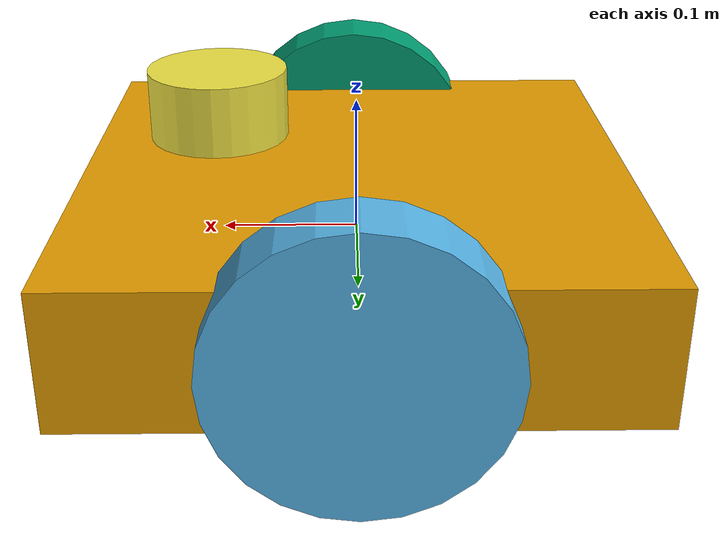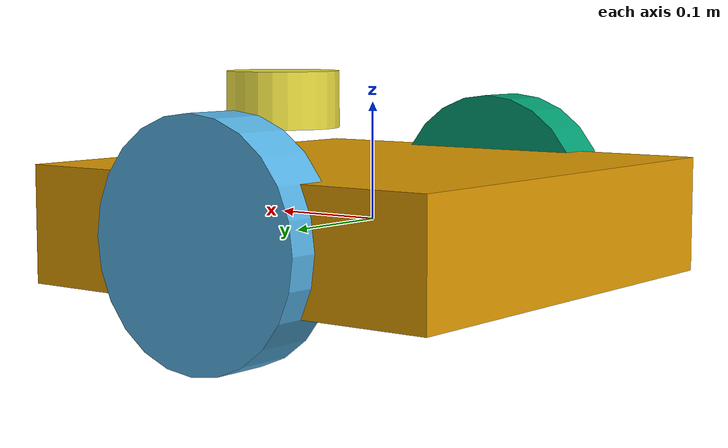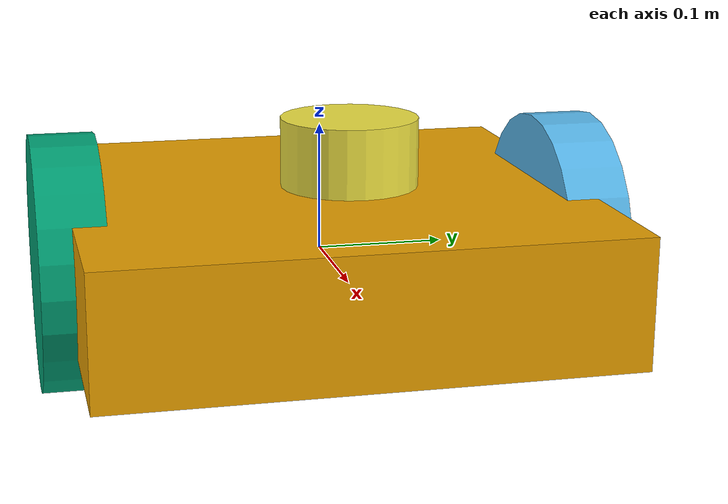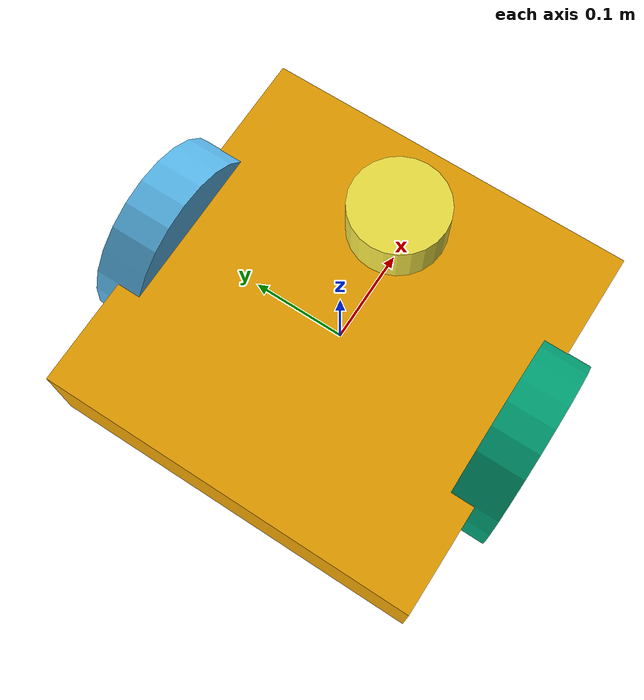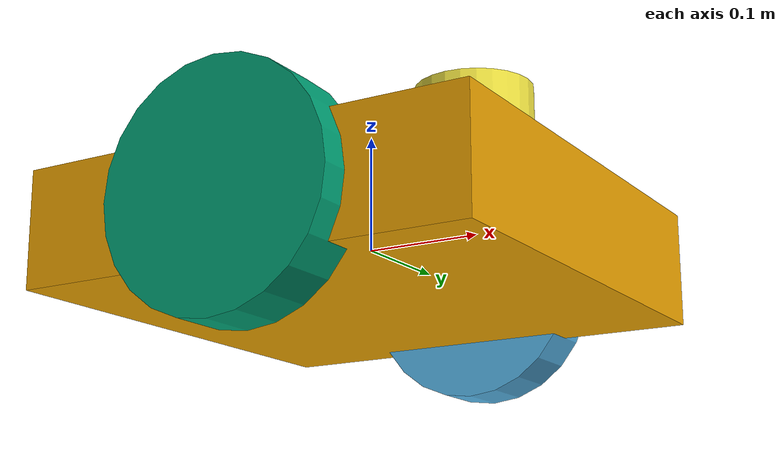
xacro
<?xml version="1.0"?>
<robot xmlns:xacro="http://www.ros.org/wiki/xacro" name="my_robot">

  <link name="base_link">
    <visual><geometry><box size="0.4 0.4 0.1"/></geometry></visual>
    <collision><geometry><box size="0.4 0.4 0.1"/></geometry></collision>
    <inertial>
      <mass value="5.0"/>
      <inertia ixx="0.07" ixy="0" ixz="0" iyy="0.07" iyz="0" izz="0.13"/>
    </inertial>
  </link>

  <link name="left_wheel">
    <visual><geometry><cylinder radius="0.1" length="0.05"/></geometry></visual>
    <collision><geometry><cylinder radius="0.1" length="0.05"/></geometry></collision>
    <inertial>
      <mass value="0.5"/>
      <inertia ixx="0.001" ixy="0" ixz="0" iyy="0.001" iyz="0" izz="0.002"/>
    </inertial>
  </link>

  <joint name="left_wheel_joint" type="continuous">
    <parent link="base_link"/><child link="left_wheel"/>
    <origin xyz="0 0.2 0" rpy="-1.5708 0 0"/><axis xyz="0 0 1"/>
  </joint>

  <link name="right_wheel">
    <visual><geometry><cylinder radius="0.1" length="0.05"/></geometry></visual>
    <collision><geometry><cylinder radius="0.1" length="0.05"/></geometry></collision>
    <inertial>
      <mass value="0.5"/>
      <inertia ixx="0.001" ixy="0" ixz="0" iyy="0.001" iyz="0" izz="0.002"/>
    </inertial>
  </link>

  <joint name="right_wheel_joint" type="continuous">
    <parent link="base_link"/><child link="right_wheel"/>
    <origin xyz="0 -0.2 0" rpy="-1.5708 0 0"/><axis xyz="0 0 1"/>
  </joint>

  <gazebo>
    <plugin name="differential_drive_controller" filename="libgazebo_ros_diff_drive.so">
      <updateRate>20</updateRate>
      <leftJoint>left_wheel_joint</leftJoint>
      <rightJoint>right_wheel_joint</rightJoint>
      <wheelSeparation>0.4</wheelSeparation>
      <wheelDiameter>0.2</wheelDiameter>
      <commandTopic>cmd_vel</commandTopic>
      <odometryTopic>odom</odometryTopic>
      <robotBaseFrame>base_link</robotBaseFrame>
      <publishWheelTF>true</publishWheelTF>
      <publishOdomTF>true</publishOdomTF>
    </plugin>
  </gazebo>

  <link name="lidar_link">
    <visual><geometry><cylinder radius="0.05" length="0.05"/></geometry></visual>
    <collision><geometry><cylinder radius="0.05" length="0.05"/></geometry></collision>
    <inertial>
      <mass value="0.1"/>
      <inertia ixx="0.0001" ixy="0" ixz="0" iyy="0.0001" iyz="0" izz="0.0001"/>
    </inertial>
  </link>

  <joint name="lidar_joint" type="fixed">
    <parent link="base_link"/><child link="lidar_link"/>
    <origin xyz="0.1 0 0.1" rpy="0 0 0"/>
  </joint>

  <gazebo reference="lidar_link">
    <sensor type="ray" name="laser">
      <visualize>false</visualize>
      <update_rate>40</update_rate>
      <ray>
        <scan><horizontal><samples>720</samples><resolution>1</resolution><min_angle>-3.14</min_angle><max_angle>3.14</max_angle></horizontal></scan>
        <range><min>0.30</min><max>30.0</max><resolution>0.01</resolution></range>
      </ray>
      <plugin name="gazebo_ros_laser_controller" filename="libgazebo_ros_laser.so">
        <topicName>/scan</topicName>
        <frameName>lidar_link</frameName>
      </plugin>
    </sensor>
  </gazebo>
</robot>
